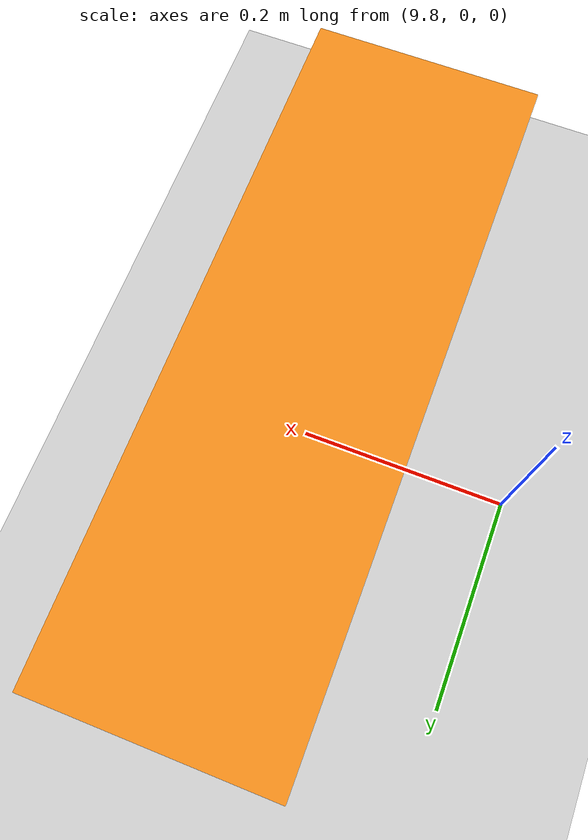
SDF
<?xml version="1.0" encoding="utf-8"?>
<!-- |    This document was autogenerated by xacro from single_brick.world.xacro       | -->
<!-- |    EDITING THIS FILE BY HAND IS NOT RECOMMENDED                                 | -->
<sdf version="1.4" xmlns:xacro="http://www.ros.org/wiki/xacro">
  <world name="default">
    <include>
      <uri>model://ground_plane</uri>
    </include>
    <include>
      <uri>model://sun</uri>
    </include>
    <model name="1.pile">
      <pose>10 0 0 0 0 1.5708</pose>
      <self_collide>true</self_collide>
      <model name="0.0.pile">
        <link name="0.brick">
          <pose>0.0 0.0 0.1 0 0 0</pose>
          <inertial>
            <mass>1.0</mass>
            <inertia>
              <ixx>0.00666666666667</ixx>
              <ixy>0</ixy>
              <ixz>0</ixz>
              <iyy>0.0333333333333</iyy>
              <iyz>0</iyz>
              <izz>0.0333333333333</izz>
            </inertia>
          </inertial>
          <visual name="visual">
            <material>
              <script>
                <uri>gazebo.material</uri>
                <name>Gazebo/Orange</name>
              </script>
            </material>
            <geometry>
              <box>
                <size>0.6 0.2 0.2</size>
              </box>
            </geometry>
          </visual>
          <collision name="collision">
            <geometry>
              <box>
                <size>0.6 0.2 0.2</size>
              </box>
            </geometry>
          </collision>
        </link>
      </model>
    </model>
  </world>
</sdf>
